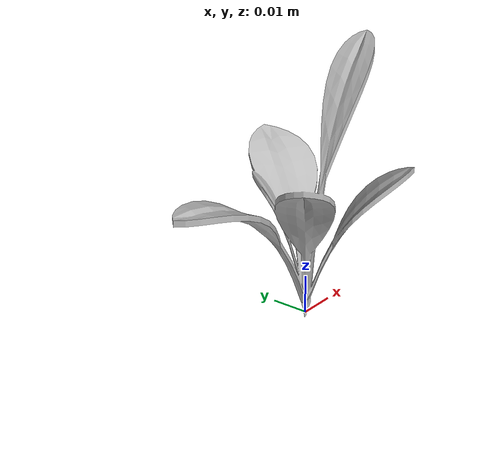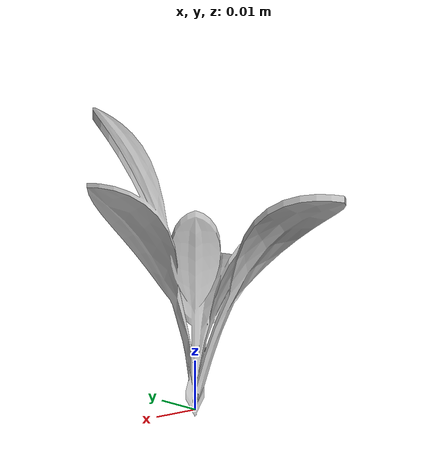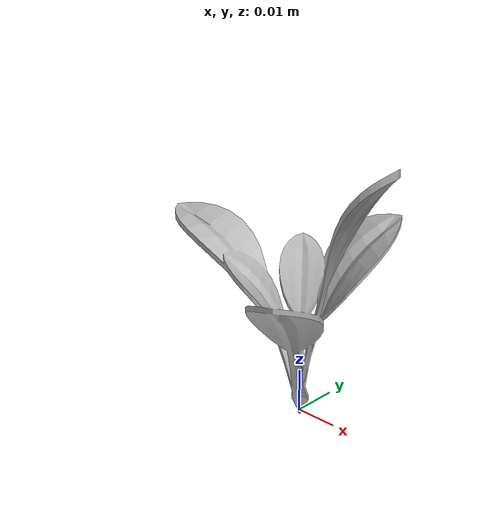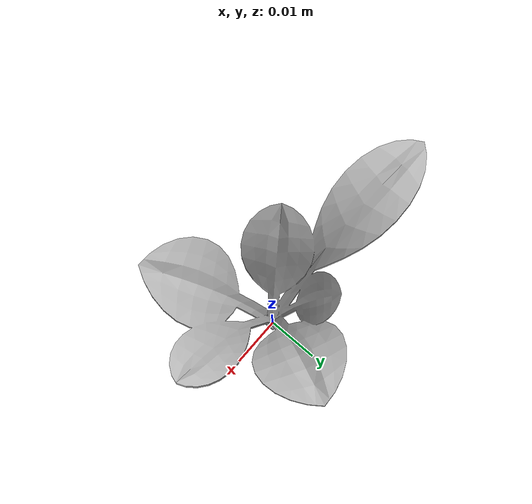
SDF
<sdf version="1.6">
  <model name="sugar_beet_49">
    <static>true</static>
    <link name="body">
      <visual name="visual">
        <geometry>
          <mesh>
            <uri>file:///sugar_beet_49/media/sugar_beet.dae</uri>
          </mesh>
        </geometry>
      </visual>
    </link>
  </model>
</sdf>
